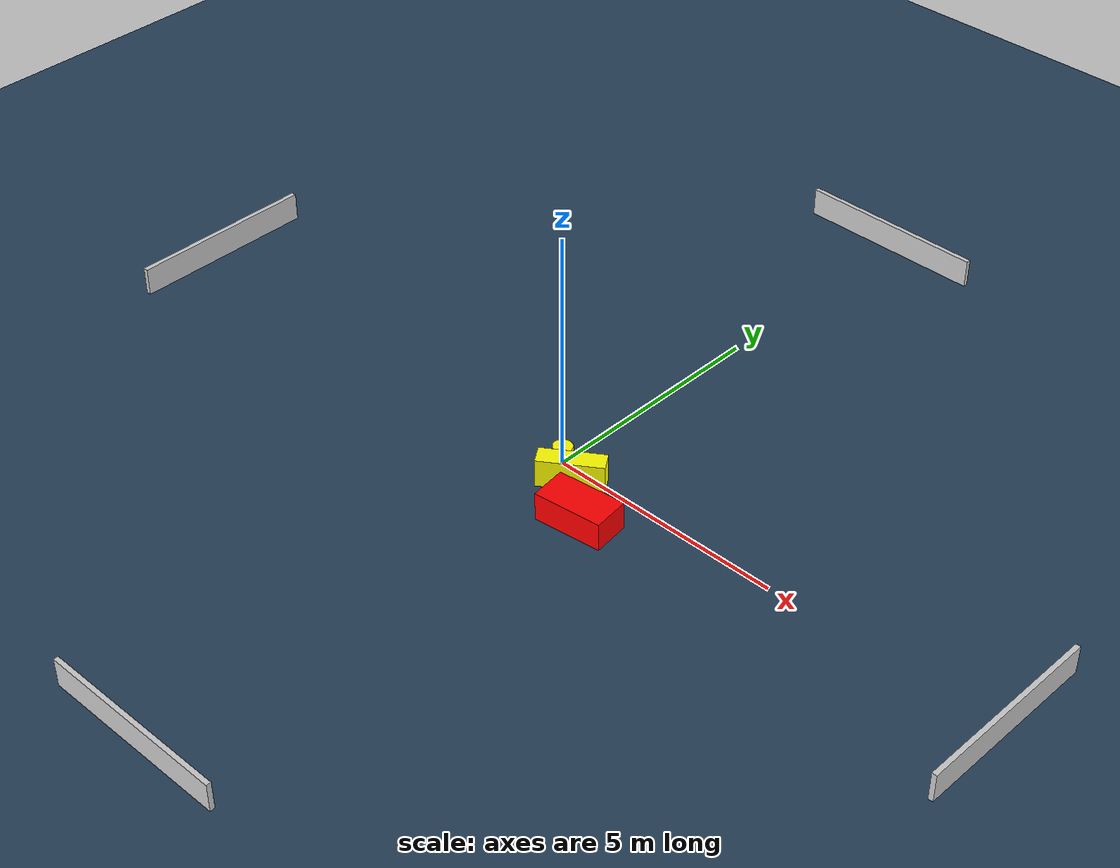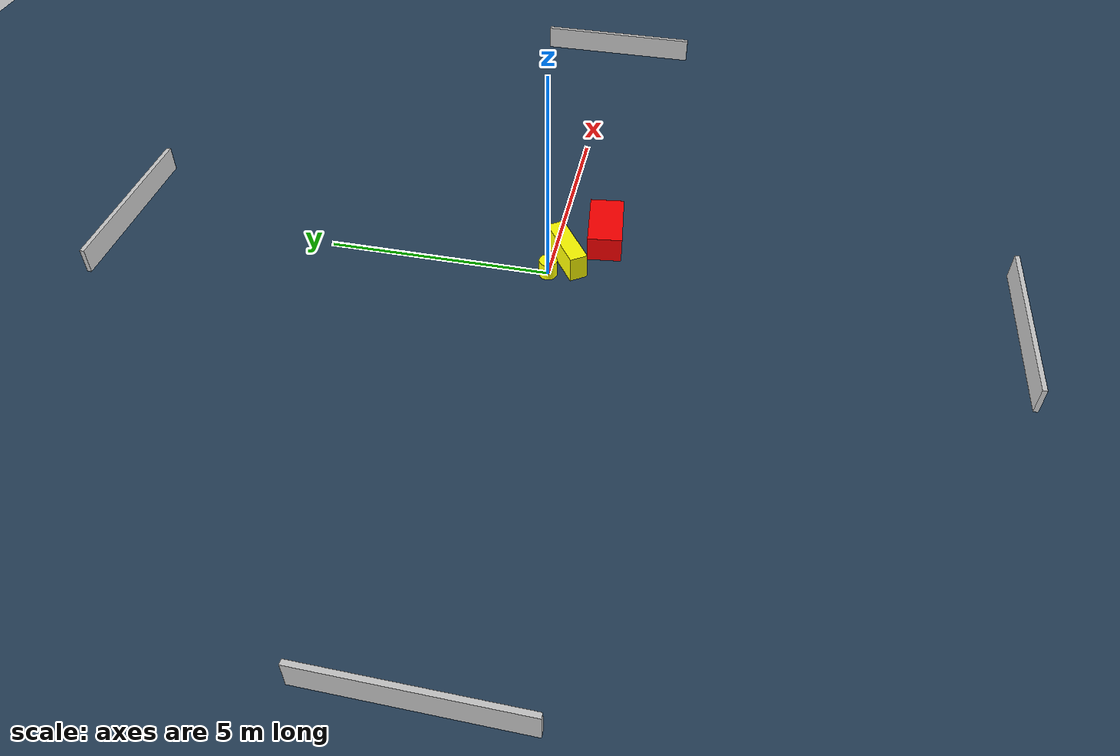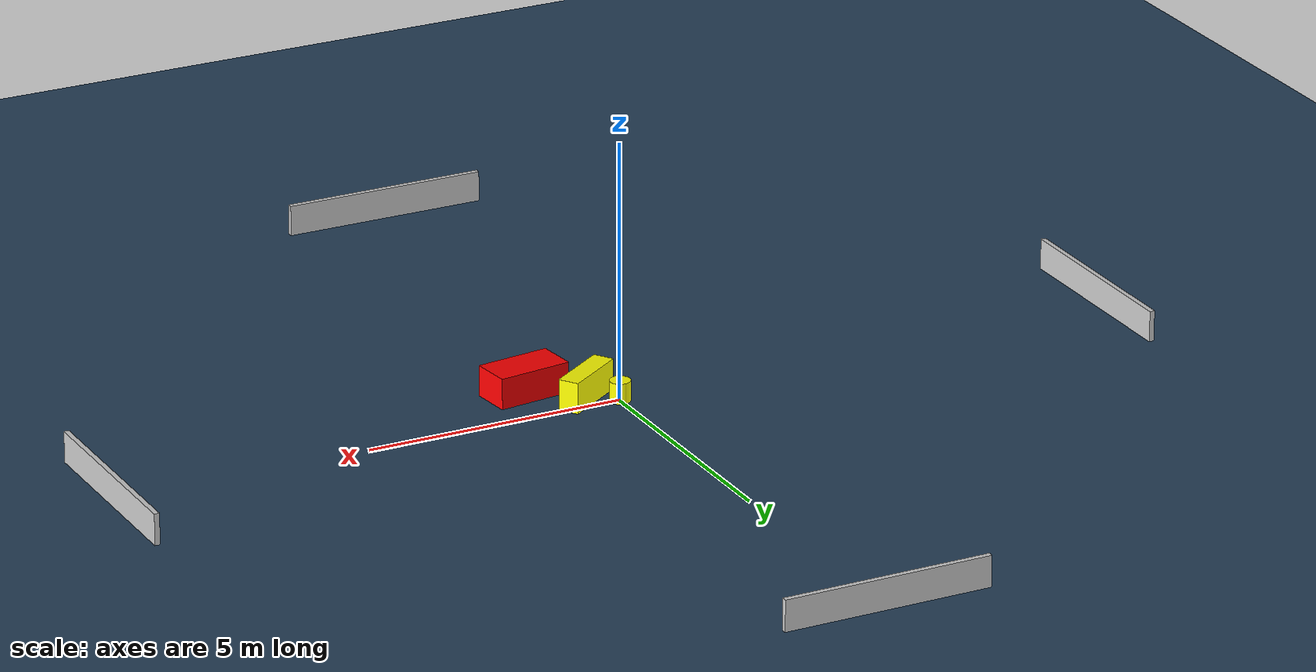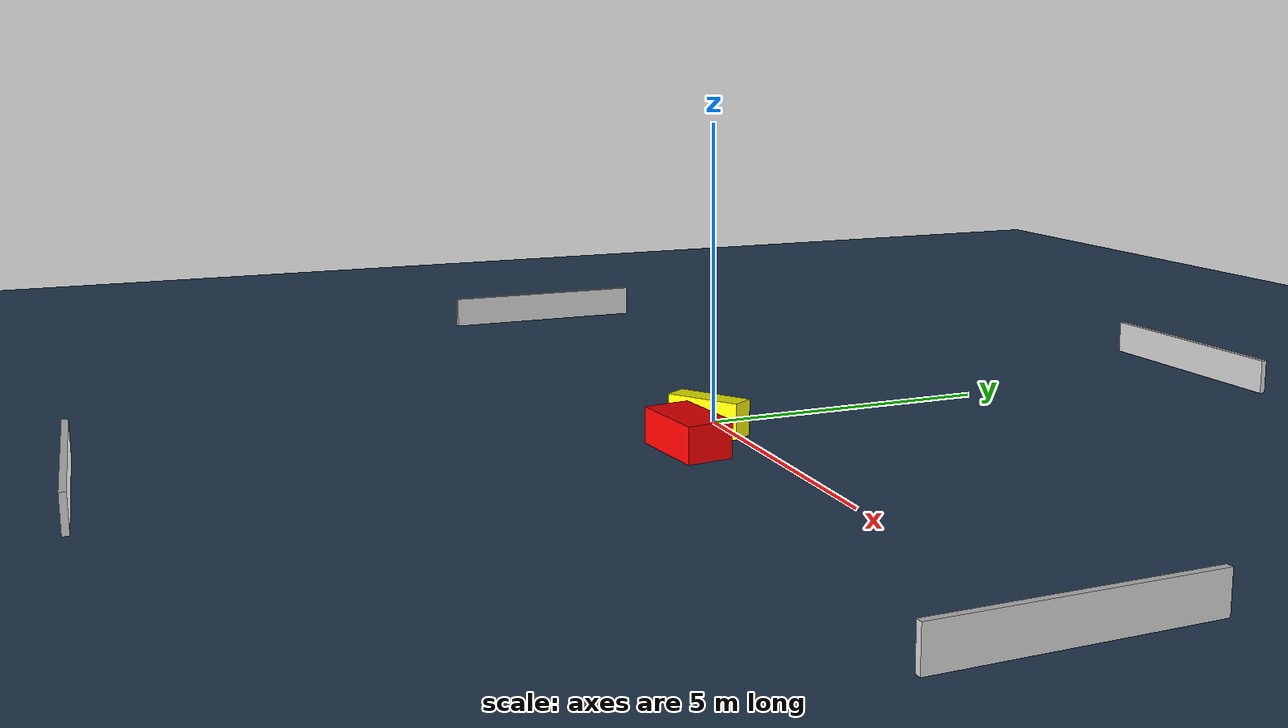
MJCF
<?xml version="1.0" ?>
<mujoco model="generated_environment">
  <option timestep="0.01" integrator="RK4" cone="elliptic"/>
  <default>
    <geom density="1"/>
  </default>
  <asset>
    <texture builtin="gradient" height="3072" name="skybox" rgb1="0.3 0.5 0.7" rgb2="0 0 0" type="skybox" width="512"/>
    <texture builtin="checker" height="300" name="groundplane" rgb1="0.2 0.3 0.4" rgb2="0.1 0.2 0.3" type="2d" width="300"/>
    <material name="groundplane" reflectance="0.2" texrepeat="5 5" texture="groundplane"/>
  </asset>
  <worldbody>
    <light dir="0 0 -1" directional="true" pos="0 0 1.5"/>
    <geom condim="3" friction="0.5 0.005 0.001" material="groundplane" name="floor" pos="0 0 0" size="0 0 0.05" type="plane"/>
    <body name="walls">
      <geom name="wall_1" condim="4" pos="-10.0 0.0 0.3" rgba="0.800000011920929 0.800000011920929 0.800000011920929 1.0" size="0.05 2.0 0.3" type="box"/>
      <geom name="wall_2" condim="4" pos="10.0 0.0 0.3" rgba="0.800000011920929 0.800000011920929 0.800000011920929 1.0" size="0.05 2.0 0.3" type="box"/>
      <geom name="wall_3" condim="4" pos="0.0 -10.0 0.3" rgba="0.800000011920929 0.800000011920929 0.800000011920929 1.0" size="2.0 0.05 0.3" type="box"/>
      <geom name="wall_4" condim="4" pos="0.0 10.0 0.3" rgba="0.800000011920929 0.800000011920929 0.800000011920929 1.0" size="2.0 0.05 0.3" type="box"/>
    </body>
    <body name="robot">
      <joint name="joint_x" type="slide" pos="0 0 0" axis="1 0 0"/>
      <joint name="joint_y" type="slide" pos="0 0 0" axis="0 1 0"/>
      <geom name="robot" type="cylinder" pos="0.0 0.0 0.2" size="0.2 0.2 0.0" mass="5.0" friction="1.0 0.005 0.0001" condim="4" rgba="1.0 1.0 0.0 1.0"/>
    </body>
    <body name="obstacle_1_movable">
      <geom name="obstacle_1_movable" condim="4" pos="0.5273911054874468 -0.3149911763483744 0.3" euler="0 0 34.25414396464615" friction="0.0 0.005 0.001" rgba="1.0 1.0 0.0 1.0" size="0.6592073979770106 0.20052527453884017 0.3" type="box" mass="0.1"/>
      <joint type="free"/>
    </body>
    <body name="obstacle_2_static">
      <geom name="obstacle_2_static" condim="4" pos="1.423794053552948 -1.045270115530539 0.3" euler="0 0 186.82071352198054" friction="0.0 0.005 0.001" rgba="1.0 0.0 0.0 1.0" size="0.7191107134217378 0.38539633302648824 0.3" type="box"/>
    </body>
  </worldbody>
  <actuator>
    <motor name="actuator_x" joint="joint_x" gear="1" ctrlrange="-1 1"/>
    <motor name="actuator_y" joint="joint_y" gear="1" ctrlrange="-1 1"/>
  </actuator>
</mujoco>
